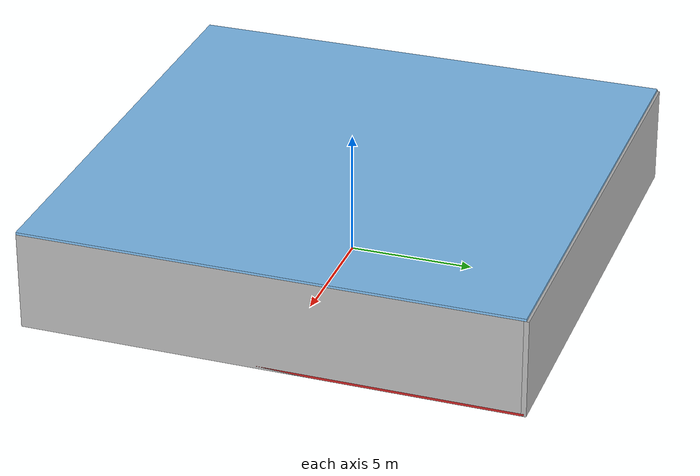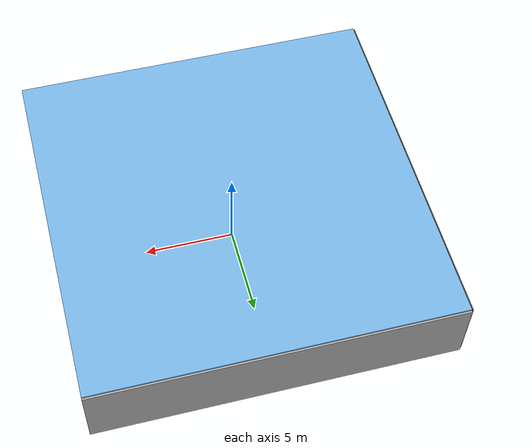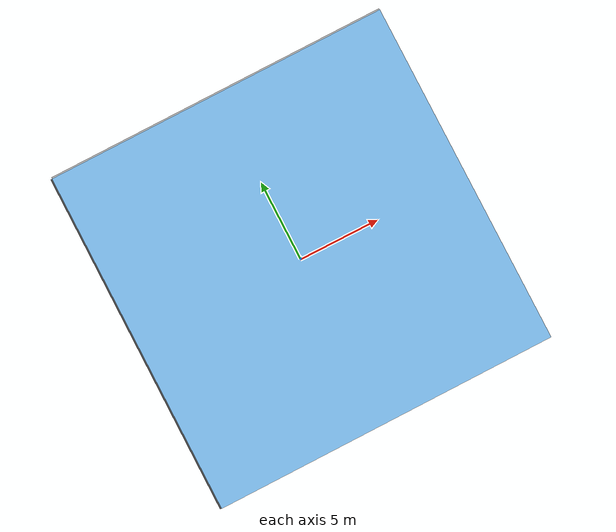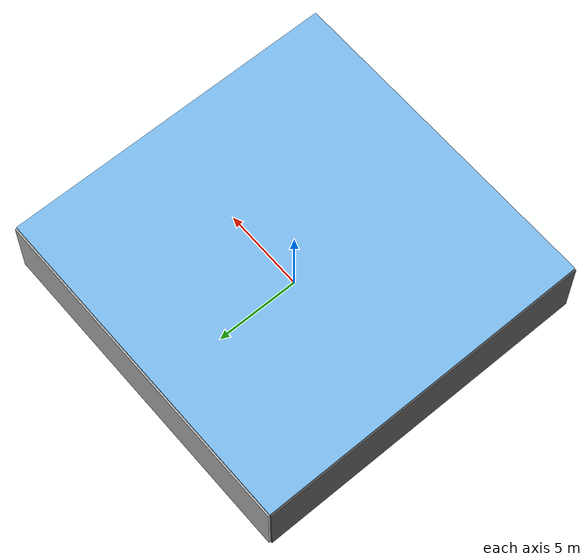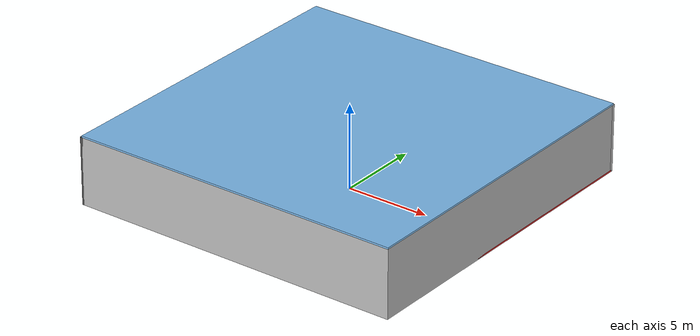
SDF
<sdf version="1.4">
 <world name="default">
  <physics type="ode">
   <max_step_size>0.001</max_step_size>
   <real_time_factor>1</real_time_factor>
   <real_time_update_rate>1000</real_time_update_rate>
   <gravity>0 0 -9.8</gravity>
  </physics>
  <scene><ambient>0.4 0.4 0.4 1</ambient><background>0.7 0.7 0.7 1</background><shadows>1</shadows></scene>
  <model name="Surrounding">
   <static>1</static>
   <link name="Ceiling">
    <collision name="Ceiling_Collision"><geometry><box><size>20 20 0.1</size></box></geometry></collision>
    <visual name="Ceiling_Visual">
     <geometry><box><size>20 20 0.1</size></box></geometry>
     <material>
      <script><uri>file://media/materials/scripts/gazebo.material</uri><name>Gazebo/SkyBlue</name></script>
     </material>
    </visual>
    <pose>0 0 4.05 0 0 0</pose>
   </link>
   <link name="Wall_South">
    <collision name="Wall_South_Collision">
     <geometry><box><size>20 0 4</size></box></geometry>
     <pose>0 0 2 0 -0 0</pose>
    </collision>
    <visual name="Wall_South_Visual">
     <pose>0 0 2 0 -0 0</pose>
     <geometry><box><size>20 0 4</size></box></geometry>
     <material>
      <script><uri>file://media/materials/scripts/gazebo.material</uri><name>Gazebo/JointAnchor</name></script>
     </material>
    </visual>
    <velocity_decay><linear>0</linear><angular>0</angular></velocity_decay>
    <pose>0 -10 0 0 -0 0</pose>
   </link>
   <link name="Wall_East">
    <collision name="Wall_21_Collision">
     <geometry><box><size>20 0 4</size></box></geometry>
     <pose>0 0 2 0 -0 0</pose>
    </collision>
    <visual name="Wall_21_Visual">
     <pose>0 0 2 0 -0 0</pose>
     <geometry><box><size>20 0 4</size></box></geometry>
     <material>
      <script><uri>file://media/materials/scripts/gazebo.material</uri><name>Gazebo/PioneerBody</name></script>
     </material>
    </visual>
    <velocity_decay><linear>0</linear><angular>0</angular></velocity_decay>
    <pose>10 0 0 0 -0 1.5708</pose>
   </link>
   <link name="Wall_North">
    <collision name="Wall_22_Collision">
     <geometry><box><size>20 0.2 4</size></box></geometry>
     <pose>0 0 2 0 -0 0</pose>
    </collision>
    <visual name="Wall_22_Visual">
     <pose>0 0 2 0 -0 0</pose>
     <geometry><box><size>20 0.2 4</size></box></geometry>
     <material>
      <script><uri>file://media/materials/scripts/gazebo.material</uri><name>Gazebo/LightOff</name></script>
     </material>
    </visual>
    <velocity_decay><linear>0</linear><angular>0</angular></velocity_decay>
    <pose>0 10 0 0 -0 0</pose>
   </link>
   <link name="Wall_West">
    <collision name="Wall_23_Collision">
     <geometry><box><size>20 0.2 4</size></box></geometry>
     <pose>0 0 2 0 -0 0</pose>
    </collision>
    <visual name="Wall_23_Visual">
     <pose>0 0 2 0 -0 0</pose>
     <geometry><box><size>20 0.2 4</size></box></geometry>
     <material>
      <script><uri>file://media/materials/scripts/gazebo.material</uri><name>Gazebo/Road</name></script>
     </material>
    </visual>
    <velocity_decay><linear>0</linear><angular>0</angular></velocity_decay>
    <pose>-10 0 0 0 0 -1.5708</pose>
   </link>
   <link name="Ground_link">
    <collision name="collision">
     <pose>0 0 .05 0 -0 0</pose>
     <geometry><box><size>20 20 0.1</size></box></geometry>
    </collision>
    <visual name="visual">
     <pose>0 0 .05 0 -0 0</pose>
     <geometry><box><size>20 20 0.1</size></box></geometry>
     <material>
      <script><uri>file://media/materials/scripts/gazebo.material</uri><name>Gazebo/RedBright</name></script>
     </material>
    </visual>
   </link>
   <static>1</static>
  </model>
  <spherical_coordinates>
   <surface_model>EARTH_WGS84</surface_model>
   <latitude_deg>0</latitude_deg>
   <longitude_deg>0</longitude_deg>
   <elevation>0</elevation>
   <heading_deg>0</heading_deg>
  </spherical_coordinates>
  <light name="lightball_0" type="diffuse">
   <diffuse>0.8 0.8 0.8 1</diffuse>
   <specular>0.2 0.2 0.2 1</specular>
   <attenuation>
    <range>100</range>
    <constant>0.7</constant>
    <linear>0.01</linear>
    <quadratic>0.001</quadratic>
   </attenuation>
   <direction>-0.5 0.1 -0.9</direction>
   <pose>8.26529077824 -3.57626030658 0.609220006446 0 0 0</pose>
  </light>
  <light name="lightball_1" type="diffuse">
   <diffuse>0.8 0.8 0.8 1</diffuse>
   <specular>0.2 0.2 0.2 1</specular>
   <attenuation>
    <range>100</range>
    <constant>0.7</constant>
    <linear>0.01</linear>
    <quadratic>0.001</quadratic>
   </attenuation>
   <direction>-0.5 0.1 -0.9</direction>
   <pose>-7.26911122577 -6.02118022083 2.94989591604 0 0 0</pose>
  </light>
  <light name="lightball_2" type="diffuse">
   <diffuse>0.8 0.8 0.8 1</diffuse>
   <specular>0.2 0.2 0.2 1</specular>
   <attenuation>
    <range>100</range>
    <constant>0.7</constant>
    <linear>0.01</linear>
    <quadratic>0.001</quadratic>
   </attenuation>
   <direction>-0.5 0.1 -0.9</direction>
   <pose>6.41303415704 -9.88627965474 1.04849513301 0 0 0</pose>
  </light>
  <light name="lightball_3" type="diffuse">
   <diffuse>0.8 0.8 0.8 1</diffuse>
   <specular>0.2 0.2 0.2 1</specular>
   <attenuation>
    <range>100</range>
    <constant>0.7</constant>
    <linear>0.01</linear>
    <quadratic>0.001</quadratic>
   </attenuation>
   <direction>-0.5 0.1 -0.9</direction>
   <pose>-8.37863947807 -5.5413437843 1.27476962641 0 0 0</pose>
  </light>
  <light name="lightball_4" type="diffuse">
   <diffuse>0.8 0.8 0.8 1</diffuse>
   <specular>0.2 0.2 0.2 1</specular>
   <attenuation>
    <range>100</range>
    <constant>0.7</constant>
    <linear>0.01</linear>
    <quadratic>0.001</quadratic>
   </attenuation>
   <direction>-0.5 0.1 -0.9</direction>
   <pose>7.41809553028 -7.29624814325 3.77030664775 0 0 0</pose>
  </light>
  <light name="lightball_5" type="diffuse">
   <diffuse>0.8 0.8 0.8 1</diffuse>
   <specular>0.2 0.2 0.2 1</specular>
   <attenuation>
    <range>100</range>
    <constant>0.7</constant>
    <linear>0.01</linear>
    <quadratic>0.001</quadratic>
   </attenuation>
   <direction>-0.5 0.1 -0.9</direction>
   <pose>5.04994242371 5.43981143277 1.52149618996 0 0 0</pose>
  </light>
  <include><uri>model://cabinet</uri><pose>-5.1439183266 -8.13705881668 0 0 0 0.775286973917</pose></include>
  <include><uri>model://table</uri><pose>-3.671656071 4.66126172429 0 0 0 0.459886204416</pose></include>
  <include><uri>model://table</uri><pose>-0.485981639169 -3.70276218915 0 0 0 2.97181782697</pose></include>
  <include><uri>model://cabinet</uri><pose>1.40354560059 2.03142295369 0 0 0 2.97355924577</pose></include>
  <include>
   <uri>model://construction_cone</uri>
   <pose>8.59952983668 -8.23372007897 0 0 0 2.06515354256</pose>
  </include>
 </world>
</sdf>

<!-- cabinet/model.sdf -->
<sdf version="1.5">
  <model name="cabinet">
    <static>true</static>
    <link name="cabinet_bottom_plate">
      <inertial>
        <pose>0 0 -1 0 0 0</pose>
        <inertia>
          <ixx>2.050000</ixx>
          <ixy>0</ixy>
          <ixz>0</ixz>
          <iyy>2.050000</iyy>
          <iyz>0</iyz>
          <izz>2.050000</izz>
        </inertia>
        <mass>25.000000</mass>
      </inertial>
      <collision name="cabinet_bottom_plate_geom">
        <pose>0 0 0.010000 0 0 0</pose>
        <geometry>
          <box>
            <size>0.450000 0.450000 0.020000</size>
          </box>
        </geometry>
      </collision>
      <visual name="cabinet_bottom_plate_geom_visual">
        <pose>0 0 0.010000 0 0 0</pose>
        <geometry>
          <box>
            <size>0.450000 0.450000 0.020000</size>
          </box>
        </geometry>
        <material>
          <script>
            <uri>model://media/materials/scripts/gazebo.material</uri>
            <name>Gazebo/Wood</name>
          </script>
        </material>
      </visual>
      <collision name="cabinet_bottom_plate_geom_cabinet_back_plate">
        <pose>0.235000 0 0.510000 0 0 0</pose>
        <geometry>
          <box>
            <size>0.020000 0.450000 1.020000</size>
          </box>
        </geometry>
      </collision>
      <visual name="cabinet_bottom_plate_geom_cabinet_back_plate_visual">
        <pose>0.235000 0 0.510000 0 0 0</pose>
        <geometry>
          <box>
            <size>0.020000 0.450000 1.020000</size>
          </box>
        </geometry>
        <material>
          <script>
            <uri>model://media/materials/scripts/gazebo.material</uri>
            <name>Gazebo/Wood</name>
          </script>
        </material>
      </visual>
      <collision name="cabinet_bottom_plate_geom_cabinet_left_plate">
        <pose>0 0.235000 0.510000 0 0 0</pose>
        <geometry>
          <box>
            <size>0.450000 0.020000 1.020000</size>
          </box>
        </geometry>
      </collision>
      <visual name="cabinet_bottom_plate_geom_cabinet_left_plate_visual">
        <pose>0 0.235000 0.510000 0 0 0</pose>
        <geometry>
          <box>
            <size>0.450000 0.020000 1.020000</size>
          </box>
        </geometry>
        <material>
          <script>
            <uri>model://media/materials/scripts/gazebo.material</uri>
            <name>Gazebo/Wood</name>
          </script>
        </material>
      </visual>
      <collision name="cabinet_bottom_plate_geom_cabinet_middle_plate">
        <pose>0 0 0.510000 0 0 0</pose>
        <geometry>
          <box>
            <size>0.450000 0.450000 0.020000</size>
          </box>
        </geometry>
      </collision>
      <visual name="cabinet_bottom_plate_geom_cabinet_middle_plate_visual">
        <pose>0 0 0.510000 0 0 0</pose>
        <geometry>
          <box>
            <size>0.450000 0.450000 0.020000</size>
          </box>
        </geometry>
        <material>
          <script>
            <uri>model://media/materials/scripts/gazebo.material</uri>
            <name>Gazebo/Wood</name>
          </script>
        </material>
      </visual>
      <collision name="cabinet_bottom_plate_geom_cabinet_right_plate">
        <pose>0 -0.235000 0.510000 0 0 0</pose>
        <geometry>
          <box>
            <size>0.450000 0.020000 1.020000</size>
          </box>
        </geometry>
      </collision>
      <visual name="cabinet_bottom_plate_geom_cabinet_right_plate_visual">
        <pose>0 -0.235000 0.510000 0 0 0</pose>
        <geometry>
          <box>
            <size>0.450000 0.020000 1.020000</size>
          </box>
        </geometry>
        <material>
          <script>
            <uri>model://media/materials/scripts/gazebo.material</uri>
            <name>Gazebo/Wood</name>
          </script>
        </material>
      </visual>
      <collision name="cabinet_bottom_plate_geom_cabinet_top_plate">
        <pose>0 0 1.010000 0 0 0</pose>
        <geometry>
          <box>
            <size>0.450000 0.450000 0.020000</size>
          </box>
        </geometry>
      </collision>
      <visual name="cabinet_bottom_plate_geom_cabinet_top_plate_visual">
        <pose>0 0 1.010000 0 0 0</pose>
        <geometry>
          <box>
            <size>0.450000 0.450000 0.020000</size>
          </box>
        </geometry>
        <material>
          <script>
            <uri>model://media/materials/scripts/gazebo.material</uri>
            <name>Gazebo/Wood</name>
          </script>
        </material>
      </visual>
    </link>
  </model>
</sdf>

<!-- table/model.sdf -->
<sdf version="1.5">
  <model name="table">
    <static>true</static>
    <link name="link">
      <collision name="surface">
        <pose>0 0 1.0 0 0 0</pose>
        <geometry>
          <box>
            <size>1.5 0.8 0.03</size>
          </box>
        </geometry>
        <surface>
          <friction>
            <ode>
              <mu>0.6</mu>
              <mu2>0.6</mu2>
            </ode>
          </friction>
        </surface>
      </collision>
      <visual name="visual1">
        <pose>0 0 1.0 0 0 0</pose>
        <geometry>
          <box>
            <size>1.5 0.8 0.03</size>
          </box>
        </geometry>
        <material>
          <script>
            <uri>model://media/materials/scripts/gazebo.material</uri>
            <name>Gazebo/Wood</name>
          </script>
        </material>
      </visual>
      <collision name="front_left_leg">
        <pose>0.68 0.38 0.5 0 0 0</pose>
        <geometry>
          <cylinder>
            <radius>0.02</radius>
            <length>1.0</length>
          </cylinder>
        </geometry>
      </collision>
      <visual name="front_left_leg">
        <pose>0.68 0.38 0.5 0 0 0</pose>
        <geometry>
          <cylinder>
            <radius>0.02</radius>
            <length>1.0</length>
          </cylinder>
        </geometry>
        <material>
          <script>
            <uri>model://media/materials/scripts/gazebo.material</uri>
            <name>Gazebo/Grey</name>
          </script>
        </material>
      </visual>
      <collision name="front_right_leg">
        <pose>0.68 -0.38 0.5 0 0 0</pose>
        <geometry>
          <cylinder>
            <radius>0.02</radius>
            <length>1.0</length>
          </cylinder>
        </geometry>
      </collision>
      <visual name="front_right_leg">
        <pose>0.68 -0.38 0.5 0 0 0</pose>
        <geometry>
          <cylinder>
            <radius>0.02</radius>
            <length>1.0</length>
          </cylinder>
        </geometry>
        <material>
          <script>
            <uri>model://media/materials/scripts/gazebo.material</uri>
            <name>Gazebo/Grey</name>
          </script>
        </material>
      </visual>
      <collision name="back_right_leg">
        <pose>-0.68 -0.38 0.5 0 0 0</pose>
        <geometry>
          <cylinder>
            <radius>0.02</radius>
            <length>1.0</length>
          </cylinder>
        </geometry>
      </collision>
      <visual name="back_right_leg">
        <pose>-0.68 -0.38 0.5 0 0 0</pose>
        <geometry>
          <cylinder>
            <radius>0.02</radius>
            <length>1.0</length>
          </cylinder>
        </geometry>
        <material>
          <script>
            <uri>model://media/materials/scripts/gazebo.material</uri>
            <name>Gazebo/Grey</name>
          </script>
        </material>
      </visual>
      <collision name="back_left_leg">
        <pose>-0.68 0.38 0.5 0 0 0</pose>
        <geometry>
          <cylinder>
            <radius>0.02</radius>
            <length>1.0</length>
          </cylinder>
        </geometry>
      </collision>
      <visual name="back_left_leg">
        <pose>-0.68 0.38 0.5 0 0 0</pose>
        <geometry>
          <cylinder>
            <radius>0.02</radius>
            <length>1.0</length>
          </cylinder>
        </geometry>
        <material>
          <script>
            <uri>model://media/materials/scripts/gazebo.material</uri>
            <name>Gazebo/Grey</name>
          </script>
        </material>
      </visual>
    </link>
  </model>
</sdf>

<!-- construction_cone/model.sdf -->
<sdf version="1.5">
  <model name="Construction Cone">
    <link name="link">
      <collision name="collision">
        <geometry>
          <mesh>
            <scale>10 10 10</scale>
            <uri>file://isr-testbed/construction_cone/meshes/construction_cone.dae</uri>
          </mesh>
        </geometry>
      </collision>
      <visual name="visual">
        <geometry>
          <mesh>
            <scale>10 10 10</scale>
            <uri>file://isr-testbed/construction_cone/meshes/construction_cone.dae</uri>
          </mesh>
        </geometry>
      </visual>
    </link>
  </model>
</sdf>
